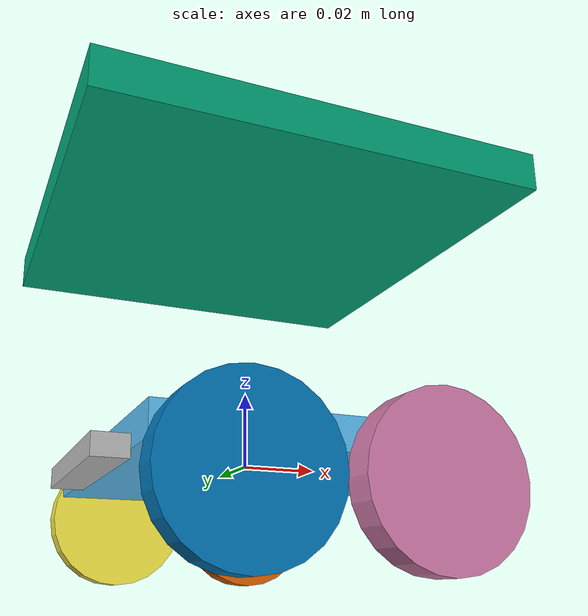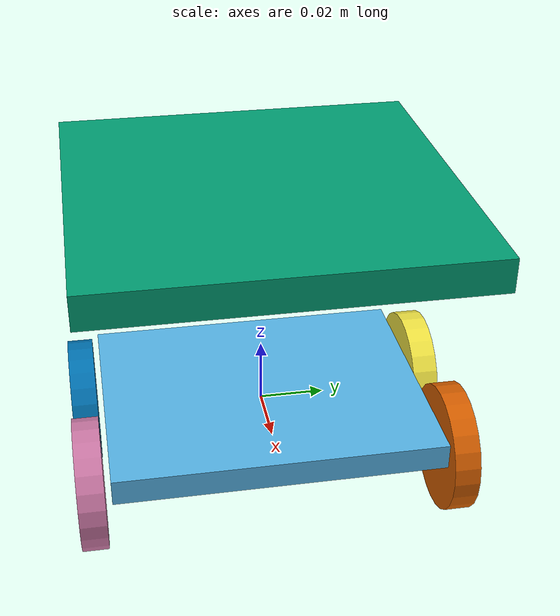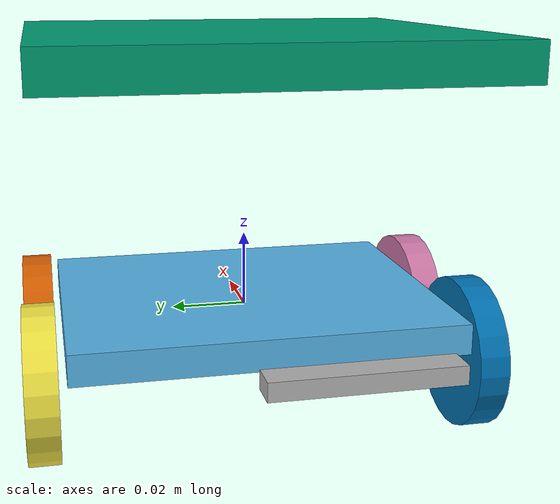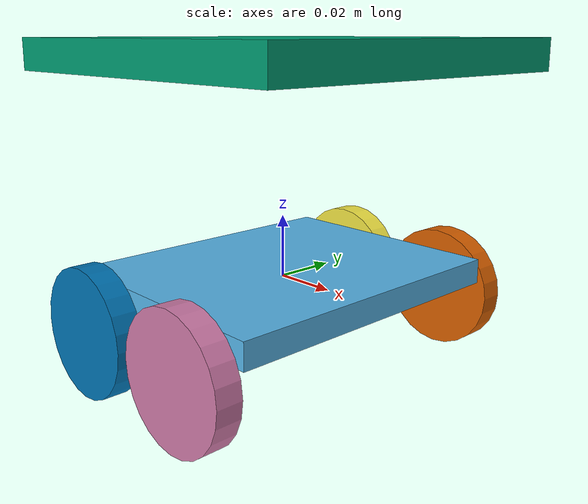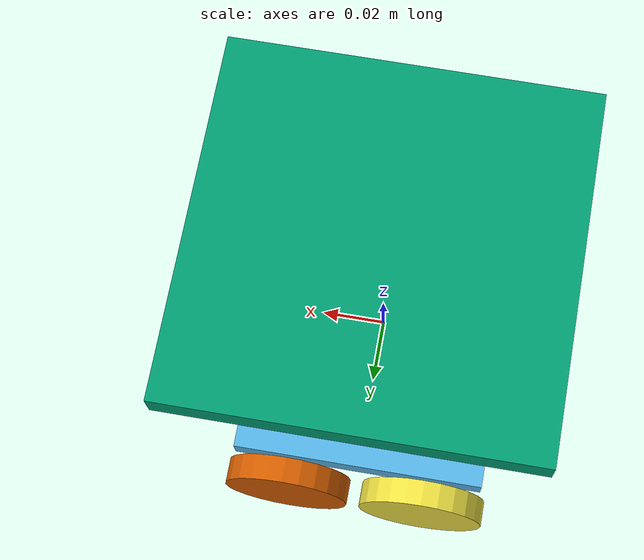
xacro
<?xml version="1.0"?>
<robot name="bot0" xmlns:xacro="http://ros.org/wiki/xacro">
	<xacro:property name="wheel_dia" value="0.04"/>
	<xacro:property name="bot_height" value="0.03"/>
	<xacro:property name="length" value="0.08"/>
	<xacro:property name="breadth" value="0.1"/>
	<xacro:property name="length_" value="0.05"/>
	<xacro:property name="breadth_" value="0.005"/>
	<xacro:property name="pi" value="3.14159"/>
	<xacro:property name="m_base" value="1"/>
	<xacro:property name="m_lever" value="0.1"/>
	<xacro:property name="m_wheel" value="0.4"/>
	<xacro:property name="m_aruco" value="0.04"/>
	<xacro:property name="m_caster_wheel" value="0.1"/>
  	<xacro:property name="bot_number" value="0"/>

	<link name="base_link"/>
	<link name="base_link_inertia">
		<inertial>
     		<origin xyz="0 0 0" rpy="0 0 0"/>
     		<mass value="${m_base}"/>
     		<inertia ixx="${m_base*(breadth*breadth+0.008*0.008)/12.0}"  ixy="0"  ixz="0" iyy="${m_base*(length*length+0.008*0.008)/12.0}" iyz="0" izz="${m_base*(breadth*breadth+length*length)/12.0}" />
   		</inertial>
		<collision>
			<origin xyz="0 0 0" rpy="0 0 0"/>
			<geometry>
				<box size="${length} ${breadth} 0.008"/>
			</geometry>
		</collision>
		<visual>
			<origin xyz="0 0 0" rpy="0 0 0"/>
			<geometry>
				<box size="${length} ${breadth} 0.008"/>
			</geometry>
		</visual>

		<!-- caster -->

	</link>

	<link name="aruco">
		<inertial>
     		<origin xyz="0 0 0" rpy="0 0 0"/>
     		<mass value="${m_aruco}"/>
     		<inertia ixx="${m_aruco*(breadth*breadth+0.008*0.008)/12.0}"  ixy="0"  ixz="0" iyy="${m_aruco*(length*length+0.008*0.008)/12.0}" iyz="0" izz="${m_aruco*(breadth*breadth+length*length)/12.0}" />
   		</inertial>
		<collision>
			<origin xyz="0 0 0" rpy="0 0 0"/>
			<geometry>
				 <mesh filename="package://bot_description/meshes/bot${bot_number+1}.dae" scale="1.25 1.25 1.25"/>
			</geometry>
		</collision>
		<visual>
			<origin xyz="0 0 0" rpy="0 0 0"/>
			<geometry>
				 <mesh filename="package://bot_description/meshes/bot${bot_number+1}.dae" scale="1.25 1.25 1.25"/>
			</geometry>
		</visual>
	</link>

<!-- x  direction wheel -->
	<link name="left_wheel">
		<inertial>
     		<origin xyz="0 0 0" rpy="0 0 0"/>
     		<mass value="${m_wheel}"/>
     		<inertia ixx="${m_wheel*(3*wheel_dia*wheel_dia/4.0+0.008*0.008)/12.0}"  ixy="0"  ixz="0" iyy="${m_wheel*(3*wheel_dia*wheel_dia/4.0+0.008*0.008)/12.0}" iyz="0" izz="${m_wheel*(wheel_dia*wheel_dia/4)/2.0}" />
   		</inertial>
		<collision>
			<origin xyz="0 0 0" rpy="0 0 0"/>
			<geometry>
				<cylinder radius="${wheel_dia/2.0}" length="0.008"/>
			</geometry>
		</collision>
		<visual>
			<origin xyz="0 0 0" rpy="0 0 0"/>
			<geometry>
				<cylinder radius="${wheel_dia/2.0}" length="0.008"/>
			</geometry>
		</visual>
	</link>
	<link name="right_wheel">
		<inertial>
     		<origin xyz="0 0 0" rpy="0 0 0"/>
     		<mass value="${m_wheel}"/>
     		<inertia ixx="${m_wheel*(3*wheel_dia*wheel_dia/4.0+0.008*0.008)/12.0}"  ixy="0"  ixz="0" iyy="${m_wheel*(3*wheel_dia*wheel_dia/4.0+0.008*0.008)/12.0}" iyz="0" izz="${m_wheel*(wheel_dia*wheel_dia/4)/2.0}" />
   		</inertial>
		<collision>
			<origin xyz="0 0 0" rpy="0 0 0"/>
			<geometry>
				<cylinder radius="${wheel_dia/2.0}" length="0.008"/>
			</geometry>
		</collision>
		<visual>
			<origin xyz="0 0 0" rpy="0 0 0"/>
			<geometry>
				<cylinder radius="${wheel_dia/2.0}" length="0.008"/>
			</geometry>
		</visual>
	</link>

	<link name="left_wheel_dumy">
		<inertial>
     		<origin xyz="0 0 0" rpy="0 0 0"/>
     		<mass value="${m_wheel}"/>
     		<inertia ixx="${m_wheel*(3*wheel_dia*wheel_dia/4.0+0.008*0.008)/12.0}"  ixy="0"  ixz="0" iyy="${m_wheel*(3*wheel_dia*wheel_dia/4.0+0.008*0.008)/12.0}" iyz="0" izz="${m_wheel*(wheel_dia*wheel_dia/4)/2.0}" />
   		</inertial>
		<collision>
			<origin xyz="0 0 0" rpy="0 0 0"/>
			<geometry>
				<cylinder radius="${wheel_dia/2.0}" length="0.008"/>
			</geometry>
		</collision>
		<visual>
			<origin xyz="0 0 0" rpy="0 0 0"/>
			<geometry>
				<cylinder radius="${wheel_dia/2.0}" length="0.008"/>
			</geometry>
		</visual>
	</link>
	<link name="right_wheel_dumy">
		<inertial>
     		<origin xyz="0 0 0" rpy="0 0 0"/>
     		<mass value="${m_wheel}"/>
     		<inertia ixx="${m_wheel*(3*wheel_dia*wheel_dia/4.0+0.008*0.008)/12.0}"  ixy="0"  ixz="0" iyy="${m_wheel*(3*wheel_dia*wheel_dia/4.0+0.008*0.008)/12.0}" iyz="0" izz="${m_wheel*(wheel_dia*wheel_dia/4)/2.0}" />
   		</inertial>
		<collision>
			<origin xyz="0 0 0" rpy="0 0 0"/>
			<geometry>
				<cylinder radius="${wheel_dia/2.0}" length="0.008"/>
			</geometry>
		</collision>
		<visual>
			<origin xyz="0 0 0" rpy="0 0 0"/>
			<geometry>
				<cylinder radius="${wheel_dia/2.0}" length="0.008"/>
			</geometry>
		</visual>
	</link>

<!-- y direction wheel -->
	<link name="back_right_wheel_lever">
		<inertial>
     		<origin xyz="0 0 0" rpy="0 0 0"/>
     		<mass value="${m_lever}"/>
     		<inertia ixx="${m_lever*(breadth_*breadth_+0.008*0.008)/12.0}"  ixy="0"  ixz="0" iyy="${m_lever*(length_*length_+0.008*0.008)/12.0}" iyz="0" izz="${m_lever*(breadth_*breadth_+length_*length_)/12.0}" />
   		</inertial>
		<collision>
			<origin xyz="0 0.02 0" rpy="0 0 0"/>
			<geometry>
				<box size="0.008 ${length_} ${breadth_}"/>
			</geometry>
		</collision>
		<visual>
			<origin xyz="0 0.02 0" rpy="0 0 0"/>
			<geometry>
				<box size="0.008 ${length_} ${breadth_}"/>
			</geometry>
		</visual>
	</link>

<!-- joints def -->

	<joint name="base_link_inertia_joint_${bot_number}" type="fixed">
		<parent link="base_link"/>
		<child link="base_link_inertia"/>
		<origin rpy="0 0 0" xyz="0 0 0"/>
	</joint>
	<joint name="aruco_joint_${bot_number}" type="fixed">
		<parent link="base_link"/>
		<child link="aruco"/>
		<origin rpy="0 0 0" xyz="0 0 0.07"/>
	</joint>
	<joint name="bot${bot_number}_left_wheel_joint" type="continuous">
		<parent link="base_link"/>
		<child link="left_wheel"/>
		<origin rpy="0 ${pi/2} ${pi/2}" xyz="-0.022 ${breadth/2+0.006}  -0.01"/>
		<axis rpy="0 0 0" xyz="0 0 1"/>
	</joint>
	<joint name="bot${bot_number}_right_wheel_joint" type="continuous">
		<parent link="base_link"/>
		<child link="right_wheel"/>
		<origin rpy="0 ${pi/2} ${pi/2}" xyz="-0.022 ${-breadth/2-0.006}  -0.01"/>
		<axis rpy="0 0 0" xyz="0 0 1"/>
	</joint>

	<joint name="bot${bot_number}_left_wheel_joint_dumy" type="continuous">
		<parent link="base_link"/>
		<child link="left_wheel_dumy"/>
		<origin rpy="0 ${pi/2} ${pi/2}" xyz="0.022 ${breadth/2+0.006}  -0.01"/>
		<axis rpy="0 0 0" xyz="0 0 1"/>
	</joint>
	<joint name="bot${bot_number}_right_wheel_joint_dumy" type="continuous">
		<parent link="base_link"/>
		<child link="right_wheel_dumy"/>
		<origin rpy="0 ${pi/2} ${pi/2}" xyz="0.022 ${-breadth/2-0.006}  -0.01"/>
		<axis rpy="0 0 0" xyz="0 0 1"/>
	</joint>

<!-- y direction level joints -->
	<joint name="bot${bot_number}_back_right_wheel_lever" type="continuous">
		<parent link="base_link"/>
		<child link="back_right_wheel_lever"/>
		<origin rpy="0 0 0" xyz="${-length/2-0.006} -0.04  -0.005"/>
		<axis rpy="0 0 0" xyz="1 0 0"/>
	</joint>

	<!-- controls plugin for vlecoty based control -->

<gazebo>
    <plugin filename="libgazebo_ros_diff_drive.so" name="differential_drive_controller">
      <alwaysOn>true</alwaysOn>
      <updateRate>2</updateRate>
      <leftJoint>bot${bot_number}_left_wheel_joint</leftJoint>
      <rightJoint>bot${bot_number}_right_wheel_joint</rightJoint>
      <wheelSeparation>0.096</wheelSeparation>
      <wheelDiameter>0.04</wheelDiameter>
      <torque>1</torque>
      <commandTopic>cmd_vel_x</commandTopic>
      <odometryTopic>odom</odometryTopic>
      <odometryFrame>odom</odometryFrame>
      <robotBaseFrame>base_link</robotBaseFrame>
    </plugin>
  </gazebo>
<gazebo>
    <plugin filename="libgazebo_ros_diff_drive.so" name="differential_drive_controller">
      <alwaysOn>true</alwaysOn>
      <updateRate>2</updateRate>
      <leftJoint>bot${bot_number}_left_wheel_joint_dumy</leftJoint>
      <rightJoint>bot${bot_number}_right_wheel_joint_dumy</rightJoint>
      <wheelSeparation>0.096</wheelSeparation>
      <wheelDiameter>0.04</wheelDiameter>
      <torque>1</torque>
      <commandTopic>cmd_vel_dumy_x</commandTopic>
      <odometryTopic>odom</odometryTopic>
      <odometryFrame>odom</odometryFrame>
      <robotBaseFrame>base_link</robotBaseFrame>
    </plugin>
  </gazebo>

</robot>
